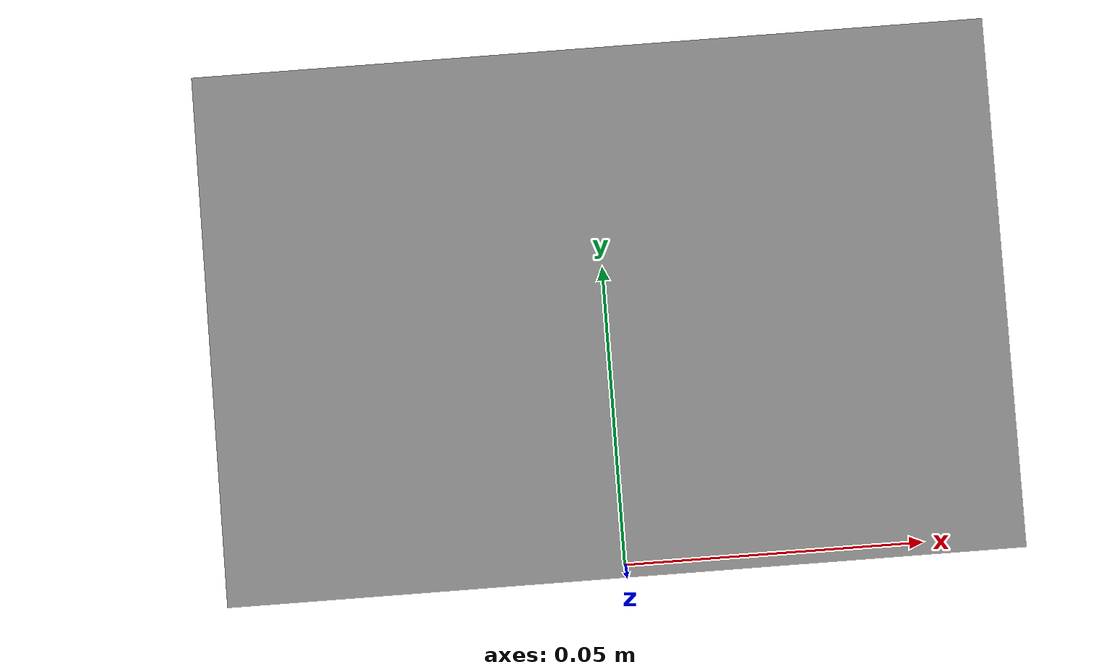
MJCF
<mujoco model="circle36">
  <asset>
    <mesh name="circle36" file="circle36.obj"/>
    <mesh name="circle36_collision_0" file="circle36_collision_0.obj"/>
    <mesh name="circle36_collision_1" file="circle36_collision_1.obj"/>
    <mesh name="circle36_collision_2" file="circle36_collision_2.obj"/>
    <mesh name="circle36_collision_3" file="circle36_collision_3.obj"/>
    <mesh name="circle36_collision_4" file="circle36_collision_4.obj"/>
    <mesh name="circle36_collision_5" file="circle36_collision_5.obj"/>
    <mesh name="circle36_collision_6" file="circle36_collision_6.obj"/>
    <mesh name="circle36_collision_7" file="circle36_collision_7.obj"/>
    <mesh name="circle36_collision_8" file="circle36_collision_8.obj"/>
    <mesh name="circle36_collision_9" file="circle36_collision_9.obj"/>
    <mesh name="circle36_collision_10" file="circle36_collision_10.obj"/>
    <mesh name="circle36_collision_11" file="circle36_collision_11.obj"/>
    <mesh name="circle36_collision_12" file="circle36_collision_12.obj"/>
    <mesh name="circle36_collision_13" file="circle36_collision_13.obj"/>
    <mesh name="circle36_collision_14" file="circle36_collision_14.obj"/>
    <mesh name="circle36_collision_15" file="circle36_collision_15.obj"/>
    <mesh name="circle36_collision_16" file="circle36_collision_16.obj"/>
    <mesh name="circle36_collision_17" file="circle36_collision_17.obj"/>
    <mesh name="circle36_collision_18" file="circle36_collision_18.obj"/>
    <mesh name="circle36_collision_19" file="circle36_collision_19.obj"/>
    <mesh name="circle36_collision_20" file="circle36_collision_20.obj"/>
    <mesh name="circle36_collision_21" file="circle36_collision_21.obj"/>
    <mesh name="circle36_collision_22" file="circle36_collision_22.obj"/>
    <mesh name="circle36_collision_23" file="circle36_collision_23.obj"/>
    <mesh name="circle36_collision_24" file="circle36_collision_24.obj"/>
    <mesh name="circle36_collision_25" file="circle36_collision_25.obj"/>
    <mesh name="circle36_collision_26" file="circle36_collision_26.obj"/>
    <mesh name="circle36_collision_27" file="circle36_collision_27.obj"/>
    <mesh name="circle36_collision_28" file="circle36_collision_28.obj"/>
    <mesh name="circle36_collision_29" file="circle36_collision_29.obj"/>
    <mesh name="circle36_collision_30" file="circle36_collision_30.obj"/>
    <mesh name="circle36_collision_31" file="circle36_collision_31.obj"/>
  </asset>
  <worldbody>
    <body name="circle36">
      <geom mesh="circle36" type="mesh" contype="0" conaffinity="0" group="2"/>
      <geom mesh="circle36_collision_0" type="mesh" group="3"/>
      <geom mesh="circle36_collision_1" type="mesh" group="3"/>
      <geom mesh="circle36_collision_2" type="mesh" group="3"/>
      <geom mesh="circle36_collision_3" type="mesh" group="3"/>
      <geom mesh="circle36_collision_4" type="mesh" group="3"/>
      <geom mesh="circle36_collision_5" type="mesh" group="3"/>
      <geom mesh="circle36_collision_6" type="mesh" group="3"/>
      <geom mesh="circle36_collision_7" type="mesh" group="3"/>
      <geom mesh="circle36_collision_8" type="mesh" group="3"/>
      <geom mesh="circle36_collision_9" type="mesh" group="3"/>
      <geom mesh="circle36_collision_10" type="mesh" group="3"/>
      <geom mesh="circle36_collision_11" type="mesh" group="3"/>
      <geom mesh="circle36_collision_12" type="mesh" group="3"/>
      <geom mesh="circle36_collision_13" type="mesh" group="3"/>
      <geom mesh="circle36_collision_14" type="mesh" group="3"/>
      <geom mesh="circle36_collision_15" type="mesh" group="3"/>
      <geom mesh="circle36_collision_16" type="mesh" group="3"/>
      <geom mesh="circle36_collision_17" type="mesh" group="3"/>
      <geom mesh="circle36_collision_18" type="mesh" group="3"/>
      <geom mesh="circle36_collision_19" type="mesh" group="3"/>
      <geom mesh="circle36_collision_20" type="mesh" group="3"/>
      <geom mesh="circle36_collision_21" type="mesh" group="3"/>
      <geom mesh="circle36_collision_22" type="mesh" group="3"/>
      <geom mesh="circle36_collision_23" type="mesh" group="3"/>
      <geom mesh="circle36_collision_24" type="mesh" group="3"/>
      <geom mesh="circle36_collision_25" type="mesh" group="3"/>
      <geom mesh="circle36_collision_26" type="mesh" group="3"/>
      <geom mesh="circle36_collision_27" type="mesh" group="3"/>
      <geom mesh="circle36_collision_28" type="mesh" group="3"/>
      <geom mesh="circle36_collision_29" type="mesh" group="3"/>
      <geom mesh="circle36_collision_30" type="mesh" group="3"/>
      <geom mesh="circle36_collision_31" type="mesh" group="3"/>
    </body>
  </worldbody>
</mujoco>
